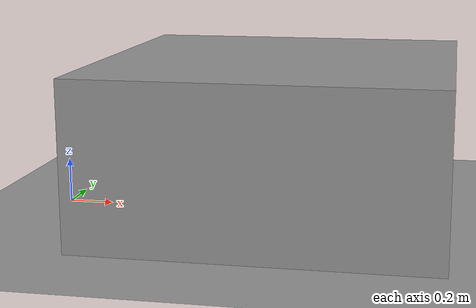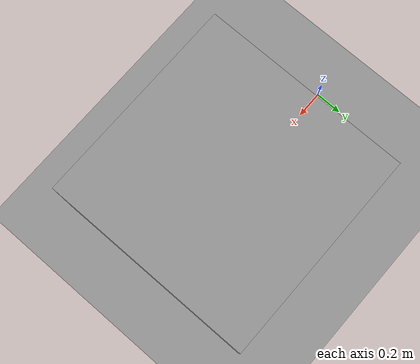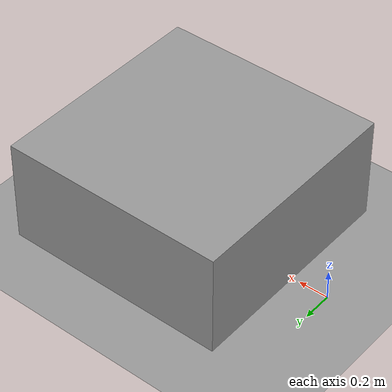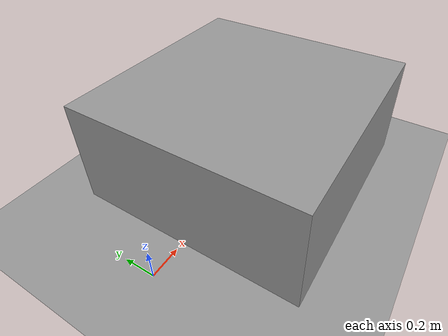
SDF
<sdf version="1.4">
 <world name="default">
  <light name="sun" type="directional">
   <pose>0 0 10 0 -0 0</pose>
   <diffuse>0.8 0.8 0.8 1</diffuse>
   <specular>0.2 0.2 0.2 1</specular>
   <attenuation>
    <range>1000</range>
    <constant>0.9</constant>
    <linear>0.01</linear>
    <quadratic>0.001</quadratic>
   </attenuation>
   <direction>0.5 0.1 -0.9</direction>
  </light>
  <scene><ambient>0.4 0.4 0.4 1</ambient><background>0.7 0.7 0.7 1</background><shadows>1</shadows></scene>
  <physics type="ode">
   <max_step_size>0.01</max_step_size>
   <real_time_factor>1</real_time_factor>
   <real_time_update_rate>100</real_time_update_rate>
   <gravity>0 0 -9.8</gravity>
  </physics>
  <model name="obstacle">
   <pose>1 0 0.35 0 0 0</pose>
   <link name="link">
    <inertial>
     <mass>0.125</mass>
     <inertia><ixx>0.041</ixx><ixy>0.0</ixy><ixz>0.0</ixz><iyy>0.041</iyy><iyz>0.0</iyz><izz>0.041</izz></inertia>
    </inertial>
    <collision name="collision">
     <geometry><box><size>1.5 1.5 0.7</size></box></geometry>
     <surface>
      <friction><ode><mu>1.0</mu><mu2>1.0</mu2></ode></friction>
      <contact><ode><max_vel>10</max_vel></ode></contact>
     </surface>
    </collision>
    <visual name="visual">
     <geometry><box><size>1.5 1.5 0.7</size></box></geometry>
     <material>
      <script><uri>file://media/materials/scripts/gazebo.material</uri><name>Gazebo/Grey</name></script>
     </material>
    </visual>
   </link>
  </model>
  <model name="ground_plane_0">
   <static>1</static>
   <link name="link">
    <collision name="collision">
     <geometry><plane><normal>0 0 1</normal><size>100 100</size></plane></geometry>
     <surface><friction><ode><mu>100</mu><mu2>50</mu2></ode></friction></surface>
    </collision>
    <visual name="visual">
     <cast_shadows>0</cast_shadows>
     <geometry><plane><normal>0 0 1</normal><size>100 100</size></plane></geometry>
     <material>
      <script><uri>file://media/materials/scripts/gazebo.material</uri><name>Gazebo/Grey</name></script>
     </material>
    </visual>
    <velocity_decay><linear>0</linear><angular>0</angular></velocity_decay>
   </link>
   <pose>0.497681 0 0 0 -0 0</pose>
  </model>
 </world>
</sdf>
